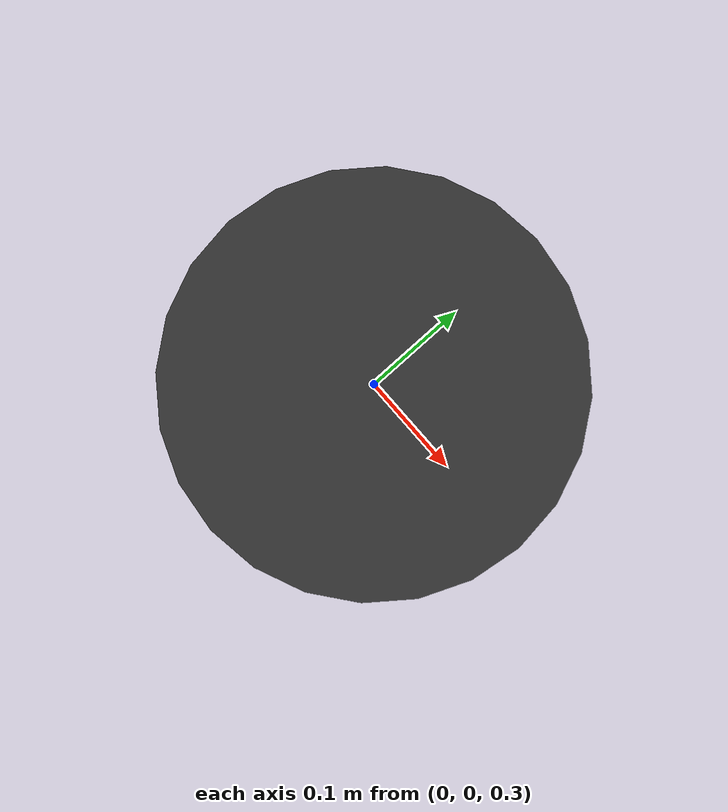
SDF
<?xml version="1.0" ?>
<sdf version="1.8">
  <model name="dwarf_interceptor">
    <pose>0 0 0.5 0 0 0</pose>

    <link name="base_link">
      <inertial>
        <!-- ballasted to match flail total mass: 2.0+0.5+4x0.3 = 3.7 kg -->
        <mass>3.7</mass>
        <inertia>
          <ixx>0.0586</ixx><iyy>0.0586</iyy><izz>0.0185</izz>
          <ixy>0</ixy><ixz>0</ixz><iyz>0</iyz>
        </inertia>
      </inertial>
      <visual name="base_visual">
        <geometry><cylinder><radius>0.1</radius><length>0.4</length></cylinder></geometry>
        <material><ambient>0.2 0.2 0.2 1</ambient><diffuse>0.2 0.2 0.2 1</diffuse></material>
      </visual>
      <collision name="base_collision">
        <geometry><cylinder><radius>0.1</radius><length>0.4</length></cylinder></geometry>
      </collision>
      <sensor name="body_contact" type="contact">
        <contact>
          <collision>base_collision</collision>
          <topic>/dwarf_interceptor/body/contact</topic>
        </contact>
        <always_on>true</always_on>
        <update_rate>1000</update_rate>
      </sensor>
    </link>

    <plugin filename="gz-sim-odometry-publisher-system"
            name="gz::sim::systems::OdometryPublisher">
      <odom_frame>world</odom_frame>
      <robot_base_frame>base_link</robot_base_frame>
      <odom_publish_frequency>100</odom_publish_frequency>
      <dimensions>3</dimensions>
    </plugin>
    <plugin filename="gz-sim-velocity-control-system"
            name="gz::sim::systems::VelocityControl">
      <topic>/model/dwarf_interceptor/cmd_vel</topic>
    </plugin>
  </model>
</sdf>
